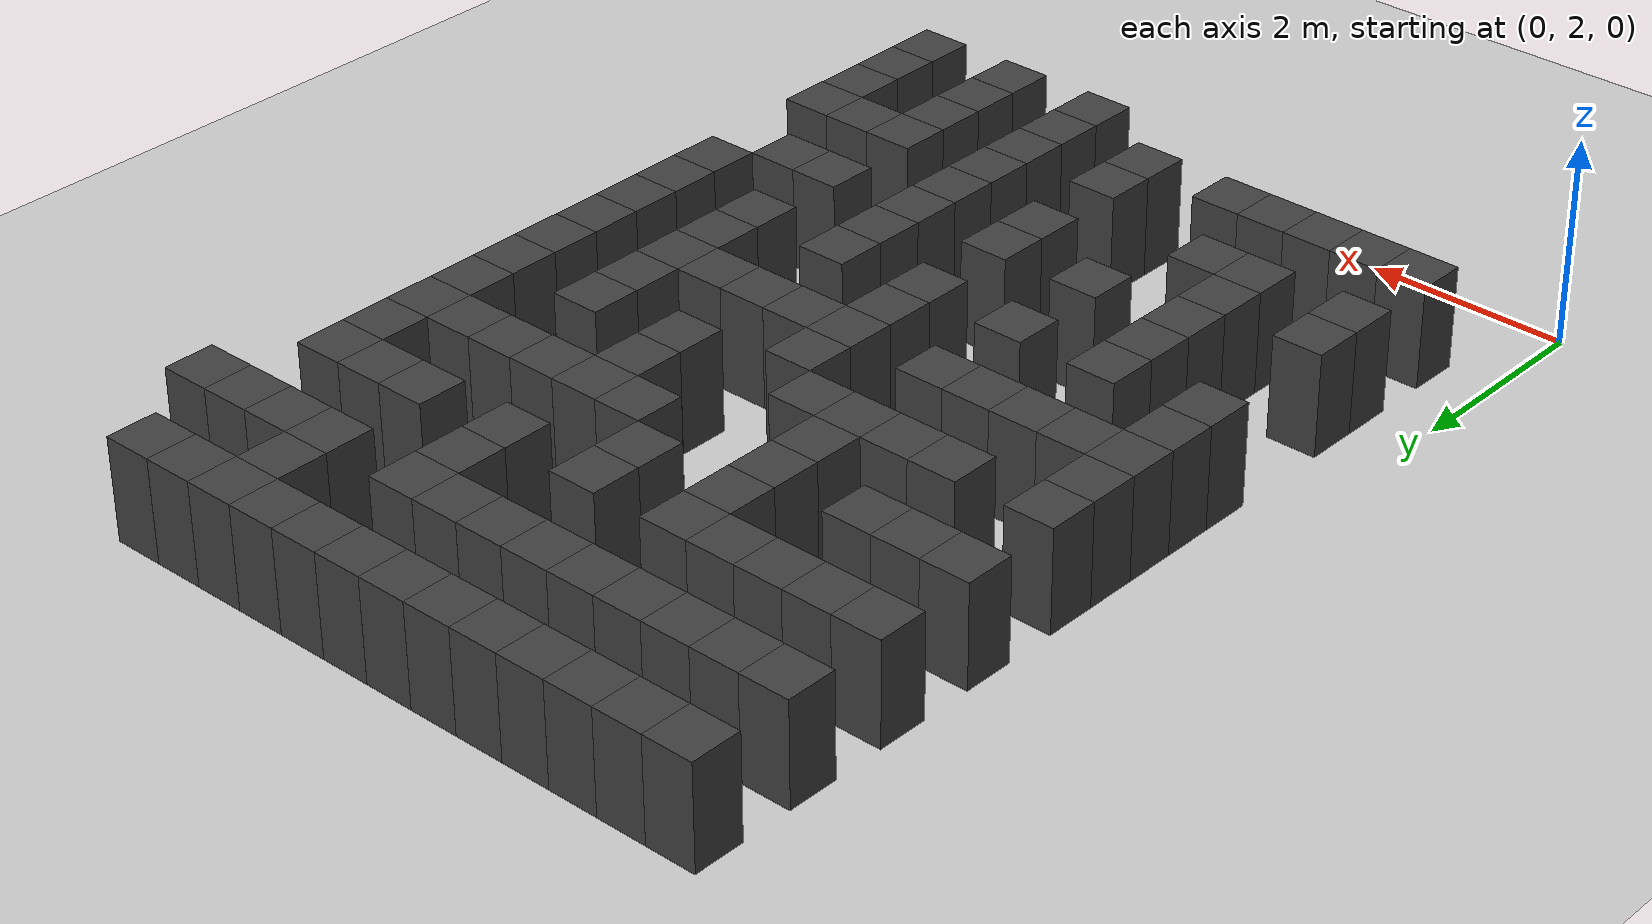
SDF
<sdf version="1.7">
 <world name="map_16048">
  <model name="ground_plane">
   <static>true</static>
   <link name="link">
    <collision name="collision">
     <geometry><plane><normal>0 0 1</normal><size>200 200</size></plane></geometry>
    </collision>
    <visual name="visual">
     <geometry><plane><normal>0 0 1</normal><size>200 200</size></plane></geometry>
     <material><ambient>0.8 0.8 0.8 1</ambient><diffuse>0.8 0.8 0.8 1</diffuse></material>
    </visual>
   </link>
  </model>
  <model name="maze_environment">
   <static>true</static>
   <link name="wall_26">
    <pose>0.750 12.250 0.500 0 0 0</pose>
    <collision name="col"><geometry><box><size>0.5 0.5 1.0</size></box></geometry></collision>
    <visual name="vis">
     <geometry><box><size>0.5 0.5 1.0</size></box></geometry>
     <material><ambient>0.15 0.15 0.15 1</ambient><diffuse>0.25 0.25 0.25 1</diffuse></material>
    </visual>
   </link>
   <link name="wall_27">
    <pose>1.250 12.250 0.500 0 0 0</pose>
    <collision name="col"><geometry><box><size>0.5 0.5 1.0</size></box></geometry></collision>
    <visual name="vis">
     <geometry><box><size>0.5 0.5 1.0</size></box></geometry>
     <material><ambient>0.15 0.15 0.15 1</ambient><diffuse>0.25 0.25 0.25 1</diffuse></material>
    </visual>
   </link>
   <link name="wall_28">
    <pose>1.750 12.250 0.500 0 0 0</pose>
    <collision name="col"><geometry><box><size>0.5 0.5 1.0</size></box></geometry></collision>
    <visual name="vis">
     <geometry><box><size>0.5 0.5 1.0</size></box></geometry>
     <material><ambient>0.15 0.15 0.15 1</ambient><diffuse>0.25 0.25 0.25 1</diffuse></material>
    </visual>
   </link>
   <link name="wall_29">
    <pose>2.250 12.250 0.500 0 0 0</pose>
    <collision name="col"><geometry><box><size>0.5 0.5 1.0</size></box></geometry></collision>
    <visual name="vis">
     <geometry><box><size>0.5 0.5 1.0</size></box></geometry>
     <material><ambient>0.15 0.15 0.15 1</ambient><diffuse>0.25 0.25 0.25 1</diffuse></material>
    </visual>
   </link>
   <link name="wall_30">
    <pose>2.750 12.250 0.500 0 0 0</pose>
    <collision name="col"><geometry><box><size>0.5 0.5 1.0</size></box></geometry></collision>
    <visual name="vis">
     <geometry><box><size>0.5 0.5 1.0</size></box></geometry>
     <material><ambient>0.15 0.15 0.15 1</ambient><diffuse>0.25 0.25 0.25 1</diffuse></material>
    </visual>
   </link>
   <link name="wall_31">
    <pose>3.250 12.250 0.500 0 0 0</pose>
    <collision name="col"><geometry><box><size>0.5 0.5 1.0</size></box></geometry></collision>
    <visual name="vis">
     <geometry><box><size>0.5 0.5 1.0</size></box></geometry>
     <material><ambient>0.15 0.15 0.15 1</ambient><diffuse>0.25 0.25 0.25 1</diffuse></material>
    </visual>
   </link>
   <link name="wall_32">
    <pose>3.750 12.250 0.500 0 0 0</pose>
    <collision name="col"><geometry><box><size>0.5 0.5 1.0</size></box></geometry></collision>
    <visual name="vis">
     <geometry><box><size>0.5 0.5 1.0</size></box></geometry>
     <material><ambient>0.15 0.15 0.15 1</ambient><diffuse>0.25 0.25 0.25 1</diffuse></material>
    </visual>
   </link>
   <link name="wall_33">
    <pose>4.250 12.250 0.500 0 0 0</pose>
    <collision name="col"><geometry><box><size>0.5 0.5 1.0</size></box></geometry></collision>
    <visual name="vis">
     <geometry><box><size>0.5 0.5 1.0</size></box></geometry>
     <material><ambient>0.15 0.15 0.15 1</ambient><diffuse>0.25 0.25 0.25 1</diffuse></material>
    </visual>
   </link>
   <link name="wall_34">
    <pose>4.750 12.250 0.500 0 0 0</pose>
    <collision name="col"><geometry><box><size>0.5 0.5 1.0</size></box></geometry></collision>
    <visual name="vis">
     <geometry><box><size>0.5 0.5 1.0</size></box></geometry>
     <material><ambient>0.15 0.15 0.15 1</ambient><diffuse>0.25 0.25 0.25 1</diffuse></material>
    </visual>
   </link>
   <link name="wall_35">
    <pose>5.250 12.250 0.500 0 0 0</pose>
    <collision name="col"><geometry><box><size>0.5 0.5 1.0</size></box></geometry></collision>
    <visual name="vis">
     <geometry><box><size>0.5 0.5 1.0</size></box></geometry>
     <material><ambient>0.15 0.15 0.15 1</ambient><diffuse>0.25 0.25 0.25 1</diffuse></material>
    </visual>
   </link>
   <link name="wall_36">
    <pose>5.750 12.250 0.500 0 0 0</pose>
    <collision name="col"><geometry><box><size>0.5 0.5 1.0</size></box></geometry></collision>
    <visual name="vis">
     <geometry><box><size>0.5 0.5 1.0</size></box></geometry>
     <material><ambient>0.15 0.15 0.15 1</ambient><diffuse>0.25 0.25 0.25 1</diffuse></material>
    </visual>
   </link>
   <link name="wall_37">
    <pose>6.250 12.250 0.500 0 0 0</pose>
    <collision name="col"><geometry><box><size>0.5 0.5 1.0</size></box></geometry></collision>
    <visual name="vis">
     <geometry><box><size>0.5 0.5 1.0</size></box></geometry>
     <material><ambient>0.15 0.15 0.15 1</ambient><diffuse>0.25 0.25 0.25 1</diffuse></material>
    </visual>
   </link>
   <link name="wall_38">
    <pose>6.750 12.250 0.500 0 0 0</pose>
    <collision name="col"><geometry><box><size>0.5 0.5 1.0</size></box></geometry></collision>
    <visual name="vis">
     <geometry><box><size>0.5 0.5 1.0</size></box></geometry>
     <material><ambient>0.15 0.15 0.15 1</ambient><diffuse>0.25 0.25 0.25 1</diffuse></material>
    </visual>
   </link>
   <link name="wall_54">
    <pose>5.750 11.750 0.500 0 0 0</pose>
    <collision name="col"><geometry><box><size>0.5 0.5 1.0</size></box></geometry></collision>
    <visual name="vis">
     <geometry><box><size>0.5 0.5 1.0</size></box></geometry>
     <material><ambient>0.15 0.15 0.15 1</ambient><diffuse>0.25 0.25 0.25 1</diffuse></material>
    </visual>
   </link>
   <link name="wall_73">
    <pose>0.750 11.250 0.500 0 0 0</pose>
    <collision name="col"><geometry><box><size>0.5 0.5 1.0</size></box></geometry></collision>
    <visual name="vis">
     <geometry><box><size>0.5 0.5 1.0</size></box></geometry>
     <material><ambient>0.15 0.15 0.15 1</ambient><diffuse>0.25 0.25 0.25 1</diffuse></material>
    </visual>
   </link>
   <link name="wall_74">
    <pose>1.250 11.250 0.500 0 0 0</pose>
    <collision name="col"><geometry><box><size>0.5 0.5 1.0</size></box></geometry></collision>
    <visual name="vis">
     <geometry><box><size>0.5 0.5 1.0</size></box></geometry>
     <material><ambient>0.15 0.15 0.15 1</ambient><diffuse>0.25 0.25 0.25 1</diffuse></material>
    </visual>
   </link>
   <link name="wall_75">
    <pose>1.750 11.250 0.500 0 0 0</pose>
    <collision name="col"><geometry><box><size>0.5 0.5 1.0</size></box></geometry></collision>
    <visual name="vis">
     <geometry><box><size>0.5 0.5 1.0</size></box></geometry>
     <material><ambient>0.15 0.15 0.15 1</ambient><diffuse>0.25 0.25 0.25 1</diffuse></material>
    </visual>
   </link>
   <link name="wall_76">
    <pose>2.250 11.250 0.500 0 0 0</pose>
    <collision name="col"><geometry><box><size>0.5 0.5 1.0</size></box></geometry></collision>
    <visual name="vis">
     <geometry><box><size>0.5 0.5 1.0</size></box></geometry>
     <material><ambient>0.15 0.15 0.15 1</ambient><diffuse>0.25 0.25 0.25 1</diffuse></material>
    </visual>
   </link>
   <link name="wall_77">
    <pose>2.750 11.250 0.500 0 0 0</pose>
    <collision name="col"><geometry><box><size>0.5 0.5 1.0</size></box></geometry></collision>
    <visual name="vis">
     <geometry><box><size>0.5 0.5 1.0</size></box></geometry>
     <material><ambient>0.15 0.15 0.15 1</ambient><diffuse>0.25 0.25 0.25 1</diffuse></material>
    </visual>
   </link>
   <link name="wall_78">
    <pose>3.250 11.250 0.500 0 0 0</pose>
    <collision name="col"><geometry><box><size>0.5 0.5 1.0</size></box></geometry></collision>
    <visual name="vis">
     <geometry><box><size>0.5 0.5 1.0</size></box></geometry>
     <material><ambient>0.15 0.15 0.15 1</ambient><diffuse>0.25 0.25 0.25 1</diffuse></material>
    </visual>
   </link>
   <link name="wall_79">
    <pose>3.750 11.250 0.500 0 0 0</pose>
    <collision name="col"><geometry><box><size>0.5 0.5 1.0</size></box></geometry></collision>
    <visual name="vis">
     <geometry><box><size>0.5 0.5 1.0</size></box></geometry>
     <material><ambient>0.15 0.15 0.15 1</ambient><diffuse>0.25 0.25 0.25 1</diffuse></material>
    </visual>
   </link>
   <link name="wall_80">
    <pose>4.250 11.250 0.500 0 0 0</pose>
    <collision name="col"><geometry><box><size>0.5 0.5 1.0</size></box></geometry></collision>
    <visual name="vis">
     <geometry><box><size>0.5 0.5 1.0</size></box></geometry>
     <material><ambient>0.15 0.15 0.15 1</ambient><diffuse>0.25 0.25 0.25 1</diffuse></material>
    </visual>
   </link>
   <link name="wall_81">
    <pose>4.750 11.250 0.500 0 0 0</pose>
    <collision name="col"><geometry><box><size>0.5 0.5 1.0</size></box></geometry></collision>
    <visual name="vis">
     <geometry><box><size>0.5 0.5 1.0</size></box></geometry>
     <material><ambient>0.15 0.15 0.15 1</ambient><diffuse>0.25 0.25 0.25 1</diffuse></material>
    </visual>
   </link>
   <link name="wall_82">
    <pose>5.750 11.250 0.500 0 0 0</pose>
    <collision name="col"><geometry><box><size>0.5 0.5 1.0</size></box></geometry></collision>
    <visual name="vis">
     <geometry><box><size>0.5 0.5 1.0</size></box></geometry>
     <material><ambient>0.15 0.15 0.15 1</ambient><diffuse>0.25 0.25 0.25 1</diffuse></material>
    </visual>
   </link>
   <link name="wall_83">
    <pose>6.250 11.250 0.500 0 0 0</pose>
    <collision name="col"><geometry><box><size>0.5 0.5 1.0</size></box></geometry></collision>
    <visual name="vis">
     <geometry><box><size>0.5 0.5 1.0</size></box></geometry>
     <material><ambient>0.15 0.15 0.15 1</ambient><diffuse>0.25 0.25 0.25 1</diffuse></material>
    </visual>
   </link>
   <link name="wall_84">
    <pose>6.750 11.250 0.500 0 0 0</pose>
    <collision name="col"><geometry><box><size>0.5 0.5 1.0</size></box></geometry></collision>
    <visual name="vis">
     <geometry><box><size>0.5 0.5 1.0</size></box></geometry>
     <material><ambient>0.15 0.15 0.15 1</ambient><diffuse>0.25 0.25 0.25 1</diffuse></material>
    </visual>
   </link>
   <link name="wall_85">
    <pose>7.250 11.250 0.500 0 0 0</pose>
    <collision name="col"><geometry><box><size>0.5 0.5 1.0</size></box></geometry></collision>
    <visual name="vis">
     <geometry><box><size>0.5 0.5 1.0</size></box></geometry>
     <material><ambient>0.15 0.15 0.15 1</ambient><diffuse>0.25 0.25 0.25 1</diffuse></material>
    </visual>
   </link>
   <link name="wall_99">
    <pose>4.750 10.750 0.500 0 0 0</pose>
    <collision name="col"><geometry><box><size>0.5 0.5 1.0</size></box></geometry></collision>
    <visual name="vis">
     <geometry><box><size>0.5 0.5 1.0</size></box></geometry>
     <material><ambient>0.15 0.15 0.15 1</ambient><diffuse>0.25 0.25 0.25 1</diffuse></material>
    </visual>
   </link>
   <link name="wall_120">
    <pose>0.750 10.250 0.500 0 0 0</pose>
    <collision name="col"><geometry><box><size>0.5 0.5 1.0</size></box></geometry></collision>
    <visual name="vis">
     <geometry><box><size>0.5 0.5 1.0</size></box></geometry>
     <material><ambient>0.15 0.15 0.15 1</ambient><diffuse>0.25 0.25 0.25 1</diffuse></material>
    </visual>
   </link>
   <link name="wall_121">
    <pose>1.250 10.250 0.500 0 0 0</pose>
    <collision name="col"><geometry><box><size>0.5 0.5 1.0</size></box></geometry></collision>
    <visual name="vis">
     <geometry><box><size>0.5 0.5 1.0</size></box></geometry>
     <material><ambient>0.15 0.15 0.15 1</ambient><diffuse>0.25 0.25 0.25 1</diffuse></material>
    </visual>
   </link>
   <link name="wall_122">
    <pose>1.750 10.250 0.500 0 0 0</pose>
    <collision name="col"><geometry><box><size>0.5 0.5 1.0</size></box></geometry></collision>
    <visual name="vis">
     <geometry><box><size>0.5 0.5 1.0</size></box></geometry>
     <material><ambient>0.15 0.15 0.15 1</ambient><diffuse>0.25 0.25 0.25 1</diffuse></material>
    </visual>
   </link>
   <link name="wall_123">
    <pose>2.250 10.250 0.500 0 0 0</pose>
    <collision name="col"><geometry><box><size>0.5 0.5 1.0</size></box></geometry></collision>
    <visual name="vis">
     <geometry><box><size>0.5 0.5 1.0</size></box></geometry>
     <material><ambient>0.15 0.15 0.15 1</ambient><diffuse>0.25 0.25 0.25 1</diffuse></material>
    </visual>
   </link>
   <link name="wall_124">
    <pose>2.750 10.250 0.500 0 0 0</pose>
    <collision name="col"><geometry><box><size>0.5 0.5 1.0</size></box></geometry></collision>
    <visual name="vis">
     <geometry><box><size>0.5 0.5 1.0</size></box></geometry>
     <material><ambient>0.15 0.15 0.15 1</ambient><diffuse>0.25 0.25 0.25 1</diffuse></material>
    </visual>
   </link>
   <link name="wall_125">
    <pose>3.750 10.250 0.500 0 0 0</pose>
    <collision name="col"><geometry><box><size>0.5 0.5 1.0</size></box></geometry></collision>
    <visual name="vis">
     <geometry><box><size>0.5 0.5 1.0</size></box></geometry>
     <material><ambient>0.15 0.15 0.15 1</ambient><diffuse>0.25 0.25 0.25 1</diffuse></material>
    </visual>
   </link>
   <link name="wall_126">
    <pose>4.750 10.250 0.500 0 0 0</pose>
    <collision name="col"><geometry><box><size>0.5 0.5 1.0</size></box></geometry></collision>
    <visual name="vis">
     <geometry><box><size>0.5 0.5 1.0</size></box></geometry>
     <material><ambient>0.15 0.15 0.15 1</ambient><diffuse>0.25 0.25 0.25 1</diffuse></material>
    </visual>
   </link>
   <link name="wall_127">
    <pose>5.750 10.250 0.500 0 0 0</pose>
    <collision name="col"><geometry><box><size>0.5 0.5 1.0</size></box></geometry></collision>
    <visual name="vis">
     <geometry><box><size>0.5 0.5 1.0</size></box></geometry>
     <material><ambient>0.15 0.15 0.15 1</ambient><diffuse>0.25 0.25 0.25 1</diffuse></material>
    </visual>
   </link>
   <link name="wall_128">
    <pose>6.250 10.250 0.500 0 0 0</pose>
    <collision name="col"><geometry><box><size>0.5 0.5 1.0</size></box></geometry></collision>
    <visual name="vis">
     <geometry><box><size>0.5 0.5 1.0</size></box></geometry>
     <material><ambient>0.15 0.15 0.15 1</ambient><diffuse>0.25 0.25 0.25 1</diffuse></material>
    </visual>
   </link>
   <link name="wall_129">
    <pose>6.750 10.250 0.500 0 0 0</pose>
    <collision name="col"><geometry><box><size>0.5 0.5 1.0</size></box></geometry></collision>
    <visual name="vis">
     <geometry><box><size>0.5 0.5 1.0</size></box></geometry>
     <material><ambient>0.15 0.15 0.15 1</ambient><diffuse>0.25 0.25 0.25 1</diffuse></material>
    </visual>
   </link>
   <link name="wall_142">
    <pose>2.750 9.750 0.500 0 0 0</pose>
    <collision name="col"><geometry><box><size>0.5 0.5 1.0</size></box></geometry></collision>
    <visual name="vis">
     <geometry><box><size>0.5 0.5 1.0</size></box></geometry>
     <material><ambient>0.15 0.15 0.15 1</ambient><diffuse>0.25 0.25 0.25 1</diffuse></material>
    </visual>
   </link>
   <link name="wall_143">
    <pose>3.750 9.750 0.500 0 0 0</pose>
    <collision name="col"><geometry><box><size>0.5 0.5 1.0</size></box></geometry></collision>
    <visual name="vis">
     <geometry><box><size>0.5 0.5 1.0</size></box></geometry>
     <material><ambient>0.15 0.15 0.15 1</ambient><diffuse>0.25 0.25 0.25 1</diffuse></material>
    </visual>
   </link>
   <link name="wall_144">
    <pose>6.750 9.750 0.500 0 0 0</pose>
    <collision name="col"><geometry><box><size>0.5 0.5 1.0</size></box></geometry></collision>
    <visual name="vis">
     <geometry><box><size>0.5 0.5 1.0</size></box></geometry>
     <material><ambient>0.15 0.15 0.15 1</ambient><diffuse>0.25 0.25 0.25 1</diffuse></material>
    </visual>
   </link>
   <link name="wall_173">
    <pose>0.750 9.250 0.500 0 0 0</pose>
    <collision name="col"><geometry><box><size>0.5 0.5 1.0</size></box></geometry></collision>
    <visual name="vis">
     <geometry><box><size>0.5 0.5 1.0</size></box></geometry>
     <material><ambient>0.15 0.15 0.15 1</ambient><diffuse>0.25 0.25 0.25 1</diffuse></material>
    </visual>
   </link>
   <link name="wall_174">
    <pose>1.250 9.250 0.500 0 0 0</pose>
    <collision name="col"><geometry><box><size>0.5 0.5 1.0</size></box></geometry></collision>
    <visual name="vis">
     <geometry><box><size>0.5 0.5 1.0</size></box></geometry>
     <material><ambient>0.15 0.15 0.15 1</ambient><diffuse>0.25 0.25 0.25 1</diffuse></material>
    </visual>
   </link>
   <link name="wall_175">
    <pose>1.750 9.250 0.500 0 0 0</pose>
    <collision name="col"><geometry><box><size>0.5 0.5 1.0</size></box></geometry></collision>
    <visual name="vis">
     <geometry><box><size>0.5 0.5 1.0</size></box></geometry>
     <material><ambient>0.15 0.15 0.15 1</ambient><diffuse>0.25 0.25 0.25 1</diffuse></material>
    </visual>
   </link>
   <link name="wall_176">
    <pose>2.750 9.250 0.500 0 0 0</pose>
    <collision name="col"><geometry><box><size>0.5 0.5 1.0</size></box></geometry></collision>
    <visual name="vis">
     <geometry><box><size>0.5 0.5 1.0</size></box></geometry>
     <material><ambient>0.15 0.15 0.15 1</ambient><diffuse>0.25 0.25 0.25 1</diffuse></material>
    </visual>
   </link>
   <link name="wall_177">
    <pose>4.250 9.250 0.500 0 0 0</pose>
    <collision name="col"><geometry><box><size>0.5 0.5 1.0</size></box></geometry></collision>
    <visual name="vis">
     <geometry><box><size>0.5 0.5 1.0</size></box></geometry>
     <material><ambient>0.15 0.15 0.15 1</ambient><diffuse>0.25 0.25 0.25 1</diffuse></material>
    </visual>
   </link>
   <link name="wall_178">
    <pose>4.750 9.250 0.500 0 0 0</pose>
    <collision name="col"><geometry><box><size>0.5 0.5 1.0</size></box></geometry></collision>
    <visual name="vis">
     <geometry><box><size>0.5 0.5 1.0</size></box></geometry>
     <material><ambient>0.15 0.15 0.15 1</ambient><diffuse>0.25 0.25 0.25 1</diffuse></material>
    </visual>
   </link>
   <link name="wall_179">
    <pose>5.250 9.250 0.500 0 0 0</pose>
    <collision name="col"><geometry><box><size>0.5 0.5 1.0</size></box></geometry></collision>
    <visual name="vis">
     <geometry><box><size>0.5 0.5 1.0</size></box></geometry>
     <material><ambient>0.15 0.15 0.15 1</ambient><diffuse>0.25 0.25 0.25 1</diffuse></material>
    </visual>
   </link>
   <link name="wall_180">
    <pose>5.750 9.250 0.500 0 0 0</pose>
    <collision name="col"><geometry><box><size>0.5 0.5 1.0</size></box></geometry></collision>
    <visual name="vis">
     <geometry><box><size>0.5 0.5 1.0</size></box></geometry>
     <material><ambient>0.15 0.15 0.15 1</ambient><diffuse>0.25 0.25 0.25 1</diffuse></material>
    </visual>
   </link>
   <link name="wall_181">
    <pose>6.250 9.250 0.500 0 0 0</pose>
    <collision name="col"><geometry><box><size>0.5 0.5 1.0</size></box></geometry></collision>
    <visual name="vis">
     <geometry><box><size>0.5 0.5 1.0</size></box></geometry>
     <material><ambient>0.15 0.15 0.15 1</ambient><diffuse>0.25 0.25 0.25 1</diffuse></material>
    </visual>
   </link>
   <link name="wall_182">
    <pose>6.750 9.250 0.500 0 0 0</pose>
    <collision name="col"><geometry><box><size>0.5 0.5 1.0</size></box></geometry></collision>
    <visual name="vis">
     <geometry><box><size>0.5 0.5 1.0</size></box></geometry>
     <material><ambient>0.15 0.15 0.15 1</ambient><diffuse>0.25 0.25 0.25 1</diffuse></material>
    </visual>
   </link>
   <link name="wall_193">
    <pose>2.750 8.750 0.500 0 0 0</pose>
    <collision name="col"><geometry><box><size>0.5 0.5 1.0</size></box></geometry></collision>
    <visual name="vis">
     <geometry><box><size>0.5 0.5 1.0</size></box></geometry>
     <material><ambient>0.15 0.15 0.15 1</ambient><diffuse>0.25 0.25 0.25 1</diffuse></material>
    </visual>
   </link>
   <link name="wall_194">
    <pose>4.750 8.750 0.500 0 0 0</pose>
    <collision name="col"><geometry><box><size>0.5 0.5 1.0</size></box></geometry></collision>
    <visual name="vis">
     <geometry><box><size>0.5 0.5 1.0</size></box></geometry>
     <material><ambient>0.15 0.15 0.15 1</ambient><diffuse>0.25 0.25 0.25 1</diffuse></material>
    </visual>
   </link>
   <link name="wall_195">
    <pose>6.750 8.750 0.500 0 0 0</pose>
    <collision name="col"><geometry><box><size>0.5 0.5 1.0</size></box></geometry></collision>
    <visual name="vis">
     <geometry><box><size>0.5 0.5 1.0</size></box></geometry>
     <material><ambient>0.15 0.15 0.15 1</ambient><diffuse>0.25 0.25 0.25 1</diffuse></material>
    </visual>
   </link>
   <link name="wall_216">
    <pose>0.750 8.250 0.500 0 0 0</pose>
    <collision name="col"><geometry><box><size>0.5 0.5 1.0</size></box></geometry></collision>
    <visual name="vis">
     <geometry><box><size>0.5 0.5 1.0</size></box></geometry>
     <material><ambient>0.15 0.15 0.15 1</ambient><diffuse>0.25 0.25 0.25 1</diffuse></material>
    </visual>
   </link>
   <link name="wall_217">
    <pose>1.750 8.250 0.500 0 0 0</pose>
    <collision name="col"><geometry><box><size>0.5 0.5 1.0</size></box></geometry></collision>
    <visual name="vis">
     <geometry><box><size>0.5 0.5 1.0</size></box></geometry>
     <material><ambient>0.15 0.15 0.15 1</ambient><diffuse>0.25 0.25 0.25 1</diffuse></material>
    </visual>
   </link>
   <link name="wall_218">
    <pose>2.250 8.250 0.500 0 0 0</pose>
    <collision name="col"><geometry><box><size>0.5 0.5 1.0</size></box></geometry></collision>
    <visual name="vis">
     <geometry><box><size>0.5 0.5 1.0</size></box></geometry>
     <material><ambient>0.15 0.15 0.15 1</ambient><diffuse>0.25 0.25 0.25 1</diffuse></material>
    </visual>
   </link>
   <link name="wall_219">
    <pose>2.750 8.250 0.500 0 0 0</pose>
    <collision name="col"><geometry><box><size>0.5 0.5 1.0</size></box></geometry></collision>
    <visual name="vis">
     <geometry><box><size>0.5 0.5 1.0</size></box></geometry>
     <material><ambient>0.15 0.15 0.15 1</ambient><diffuse>0.25 0.25 0.25 1</diffuse></material>
    </visual>
   </link>
   <link name="wall_220">
    <pose>3.250 8.250 0.500 0 0 0</pose>
    <collision name="col"><geometry><box><size>0.5 0.5 1.0</size></box></geometry></collision>
    <visual name="vis">
     <geometry><box><size>0.5 0.5 1.0</size></box></geometry>
     <material><ambient>0.15 0.15 0.15 1</ambient><diffuse>0.25 0.25 0.25 1</diffuse></material>
    </visual>
   </link>
   <link name="wall_221">
    <pose>4.750 8.250 0.500 0 0 0</pose>
    <collision name="col"><geometry><box><size>0.5 0.5 1.0</size></box></geometry></collision>
    <visual name="vis">
     <geometry><box><size>0.5 0.5 1.0</size></box></geometry>
     <material><ambient>0.15 0.15 0.15 1</ambient><diffuse>0.25 0.25 0.25 1</diffuse></material>
    </visual>
   </link>
   <link name="wall_222">
    <pose>5.750 8.250 0.500 0 0 0</pose>
    <collision name="col"><geometry><box><size>0.5 0.5 1.0</size></box></geometry></collision>
    <visual name="vis">
     <geometry><box><size>0.5 0.5 1.0</size></box></geometry>
     <material><ambient>0.15 0.15 0.15 1</ambient><diffuse>0.25 0.25 0.25 1</diffuse></material>
    </visual>
   </link>
   <link name="wall_223">
    <pose>6.750 8.250 0.500 0 0 0</pose>
    <collision name="col"><geometry><box><size>0.5 0.5 1.0</size></box></geometry></collision>
    <visual name="vis">
     <geometry><box><size>0.5 0.5 1.0</size></box></geometry>
     <material><ambient>0.15 0.15 0.15 1</ambient><diffuse>0.25 0.25 0.25 1</diffuse></material>
    </visual>
   </link>
   <link name="wall_240">
    <pose>0.750 7.750 0.500 0 0 0</pose>
    <collision name="col"><geometry><box><size>0.5 0.5 1.0</size></box></geometry></collision>
    <visual name="vis">
     <geometry><box><size>0.5 0.5 1.0</size></box></geometry>
     <material><ambient>0.15 0.15 0.15 1</ambient><diffuse>0.25 0.25 0.25 1</diffuse></material>
    </visual>
   </link>
   <link name="wall_241">
    <pose>3.750 7.750 0.500 0 0 0</pose>
    <collision name="col"><geometry><box><size>0.5 0.5 1.0</size></box></geometry></collision>
    <visual name="vis">
     <geometry><box><size>0.5 0.5 1.0</size></box></geometry>
     <material><ambient>0.15 0.15 0.15 1</ambient><diffuse>0.25 0.25 0.25 1</diffuse></material>
    </visual>
   </link>
   <link name="wall_242">
    <pose>5.750 7.750 0.500 0 0 0</pose>
    <collision name="col"><geometry><box><size>0.5 0.5 1.0</size></box></geometry></collision>
    <visual name="vis">
     <geometry><box><size>0.5 0.5 1.0</size></box></geometry>
     <material><ambient>0.15 0.15 0.15 1</ambient><diffuse>0.25 0.25 0.25 1</diffuse></material>
    </visual>
   </link>
   <link name="wall_243">
    <pose>6.750 7.750 0.500 0 0 0</pose>
    <collision name="col"><geometry><box><size>0.5 0.5 1.0</size></box></geometry></collision>
    <visual name="vis">
     <geometry><box><size>0.5 0.5 1.0</size></box></geometry>
     <material><ambient>0.15 0.15 0.15 1</ambient><diffuse>0.25 0.25 0.25 1</diffuse></material>
    </visual>
   </link>
   <link name="wall_264">
    <pose>0.750 7.250 0.500 0 0 0</pose>
    <collision name="col"><geometry><box><size>0.5 0.5 1.0</size></box></geometry></collision>
    <visual name="vis">
     <geometry><box><size>0.5 0.5 1.0</size></box></geometry>
     <material><ambient>0.15 0.15 0.15 1</ambient><diffuse>0.25 0.25 0.25 1</diffuse></material>
    </visual>
   </link>
   <link name="wall_265">
    <pose>1.250 7.250 0.500 0 0 0</pose>
    <collision name="col"><geometry><box><size>0.5 0.5 1.0</size></box></geometry></collision>
    <visual name="vis">
     <geometry><box><size>0.5 0.5 1.0</size></box></geometry>
     <material><ambient>0.15 0.15 0.15 1</ambient><diffuse>0.25 0.25 0.25 1</diffuse></material>
    </visual>
   </link>
   <link name="wall_266">
    <pose>1.750 7.250 0.500 0 0 0</pose>
    <collision name="col"><geometry><box><size>0.5 0.5 1.0</size></box></geometry></collision>
    <visual name="vis">
     <geometry><box><size>0.5 0.5 1.0</size></box></geometry>
     <material><ambient>0.15 0.15 0.15 1</ambient><diffuse>0.25 0.25 0.25 1</diffuse></material>
    </visual>
   </link>
   <link name="wall_267">
    <pose>2.250 7.250 0.500 0 0 0</pose>
    <collision name="col"><geometry><box><size>0.5 0.5 1.0</size></box></geometry></collision>
    <visual name="vis">
     <geometry><box><size>0.5 0.5 1.0</size></box></geometry>
     <material><ambient>0.15 0.15 0.15 1</ambient><diffuse>0.25 0.25 0.25 1</diffuse></material>
    </visual>
   </link>
   <link name="wall_268">
    <pose>2.750 7.250 0.500 0 0 0</pose>
    <collision name="col"><geometry><box><size>0.5 0.5 1.0</size></box></geometry></collision>
    <visual name="vis">
     <geometry><box><size>0.5 0.5 1.0</size></box></geometry>
     <material><ambient>0.15 0.15 0.15 1</ambient><diffuse>0.25 0.25 0.25 1</diffuse></material>
    </visual>
   </link>
   <link name="wall_269">
    <pose>3.750 7.250 0.500 0 0 0</pose>
    <collision name="col"><geometry><box><size>0.5 0.5 1.0</size></box></geometry></collision>
    <visual name="vis">
     <geometry><box><size>0.5 0.5 1.0</size></box></geometry>
     <material><ambient>0.15 0.15 0.15 1</ambient><diffuse>0.25 0.25 0.25 1</diffuse></material>
    </visual>
   </link>
   <link name="wall_270">
    <pose>4.250 7.250 0.500 0 0 0</pose>
    <collision name="col"><geometry><box><size>0.5 0.5 1.0</size></box></geometry></collision>
    <visual name="vis">
     <geometry><box><size>0.5 0.5 1.0</size></box></geometry>
     <material><ambient>0.15 0.15 0.15 1</ambient><diffuse>0.25 0.25 0.25 1</diffuse></material>
    </visual>
   </link>
   <link name="wall_271">
    <pose>4.750 7.250 0.500 0 0 0</pose>
    <collision name="col"><geometry><box><size>0.5 0.5 1.0</size></box></geometry></collision>
    <visual name="vis">
     <geometry><box><size>0.5 0.5 1.0</size></box></geometry>
     <material><ambient>0.15 0.15 0.15 1</ambient><diffuse>0.25 0.25 0.25 1</diffuse></material>
    </visual>
   </link>
   <link name="wall_272">
    <pose>5.250 7.250 0.500 0 0 0</pose>
    <collision name="col"><geometry><box><size>0.5 0.5 1.0</size></box></geometry></collision>
    <visual name="vis">
     <geometry><box><size>0.5 0.5 1.0</size></box></geometry>
     <material><ambient>0.15 0.15 0.15 1</ambient><diffuse>0.25 0.25 0.25 1</diffuse></material>
    </visual>
   </link>
   <link name="wall_273">
    <pose>5.750 7.250 0.500 0 0 0</pose>
    <collision name="col"><geometry><box><size>0.5 0.5 1.0</size></box></geometry></collision>
    <visual name="vis">
     <geometry><box><size>0.5 0.5 1.0</size></box></geometry>
     <material><ambient>0.15 0.15 0.15 1</ambient><diffuse>0.25 0.25 0.25 1</diffuse></material>
    </visual>
   </link>
   <link name="wall_274">
    <pose>6.750 7.250 0.500 0 0 0</pose>
    <collision name="col"><geometry><box><size>0.5 0.5 1.0</size></box></geometry></collision>
    <visual name="vis">
     <geometry><box><size>0.5 0.5 1.0</size></box></geometry>
     <material><ambient>0.15 0.15 0.15 1</ambient><diffuse>0.25 0.25 0.25 1</diffuse></material>
    </visual>
   </link>
   <link name="wall_289">
    <pose>0.750 6.750 0.500 0 0 0</pose>
    <collision name="col"><geometry><box><size>0.5 0.5 1.0</size></box></geometry></collision>
    <visual name="vis">
     <geometry><box><size>0.5 0.5 1.0</size></box></geometry>
     <material><ambient>0.15 0.15 0.15 1</ambient><diffuse>0.25 0.25 0.25 1</diffuse></material>
    </visual>
   </link>
   <link name="wall_290">
    <pose>3.750 6.750 0.500 0 0 0</pose>
    <collision name="col"><geometry><box><size>0.5 0.5 1.0</size></box></geometry></collision>
    <visual name="vis">
     <geometry><box><size>0.5 0.5 1.0</size></box></geometry>
     <material><ambient>0.15 0.15 0.15 1</ambient><diffuse>0.25 0.25 0.25 1</diffuse></material>
    </visual>
   </link>
   <link name="wall_291">
    <pose>5.750 6.750 0.500 0 0 0</pose>
    <collision name="col"><geometry><box><size>0.5 0.5 1.0</size></box></geometry></collision>
    <visual name="vis">
     <geometry><box><size>0.5 0.5 1.0</size></box></geometry>
     <material><ambient>0.15 0.15 0.15 1</ambient><diffuse>0.25 0.25 0.25 1</diffuse></material>
    </visual>
   </link>
   <link name="wall_292">
    <pose>6.750 6.750 0.500 0 0 0</pose>
    <collision name="col"><geometry><box><size>0.5 0.5 1.0</size></box></geometry></collision>
    <visual name="vis">
     <geometry><box><size>0.5 0.5 1.0</size></box></geometry>
     <material><ambient>0.15 0.15 0.15 1</ambient><diffuse>0.25 0.25 0.25 1</diffuse></material>
    </visual>
   </link>
   <link name="wall_315">
    <pose>0.750 6.250 0.500 0 0 0</pose>
    <collision name="col"><geometry><box><size>0.5 0.5 1.0</size></box></geometry></collision>
    <visual name="vis">
     <geometry><box><size>0.5 0.5 1.0</size></box></geometry>
     <material><ambient>0.15 0.15 0.15 1</ambient><diffuse>0.25 0.25 0.25 1</diffuse></material>
    </visual>
   </link>
   <link name="wall_316">
    <pose>1.750 6.250 0.500 0 0 0</pose>
    <collision name="col"><geometry><box><size>0.5 0.5 1.0</size></box></geometry></collision>
    <visual name="vis">
     <geometry><box><size>0.5 0.5 1.0</size></box></geometry>
     <material><ambient>0.15 0.15 0.15 1</ambient><diffuse>0.25 0.25 0.25 1</diffuse></material>
    </visual>
   </link>
   <link name="wall_317">
    <pose>2.750 6.250 0.500 0 0 0</pose>
    <collision name="col"><geometry><box><size>0.5 0.5 1.0</size></box></geometry></collision>
    <visual name="vis">
     <geometry><box><size>0.5 0.5 1.0</size></box></geometry>
     <material><ambient>0.15 0.15 0.15 1</ambient><diffuse>0.25 0.25 0.25 1</diffuse></material>
    </visual>
   </link>
   <link name="wall_318">
    <pose>3.750 6.250 0.500 0 0 0</pose>
    <collision name="col"><geometry><box><size>0.5 0.5 1.0</size></box></geometry></collision>
    <visual name="vis">
     <geometry><box><size>0.5 0.5 1.0</size></box></geometry>
     <material><ambient>0.15 0.15 0.15 1</ambient><diffuse>0.25 0.25 0.25 1</diffuse></material>
    </visual>
   </link>
   <link name="wall_319">
    <pose>4.750 6.250 0.500 0 0 0</pose>
    <collision name="col"><geometry><box><size>0.5 0.5 1.0</size></box></geometry></collision>
    <visual name="vis">
     <geometry><box><size>0.5 0.5 1.0</size></box></geometry>
     <material><ambient>0.15 0.15 0.15 1</ambient><diffuse>0.25 0.25 0.25 1</diffuse></material>
    </visual>
   </link>
   <link name="wall_320">
    <pose>5.750 6.250 0.500 0 0 0</pose>
    <collision name="col"><geometry><box><size>0.5 0.5 1.0</size></box></geometry></collision>
    <visual name="vis">
     <geometry><box><size>0.5 0.5 1.0</size></box></geometry>
     <material><ambient>0.15 0.15 0.15 1</ambient><diffuse>0.25 0.25 0.25 1</diffuse></material>
    </visual>
   </link>
   <link name="wall_321">
    <pose>6.750 6.250 0.500 0 0 0</pose>
    <collision name="col"><geometry><box><size>0.5 0.5 1.0</size></box></geometry></collision>
    <visual name="vis">
     <geometry><box><size>0.5 0.5 1.0</size></box></geometry>
     <material><ambient>0.15 0.15 0.15 1</ambient><diffuse>0.25 0.25 0.25 1</diffuse></material>
    </visual>
   </link>
   <link name="wall_337">
    <pose>1.750 5.750 0.500 0 0 0</pose>
    <collision name="col"><geometry><box><size>0.5 0.5 1.0</size></box></geometry></collision>
    <visual name="vis">
     <geometry><box><size>0.5 0.5 1.0</size></box></geometry>
     <material><ambient>0.15 0.15 0.15 1</ambient><diffuse>0.25 0.25 0.25 1</diffuse></material>
    </visual>
   </link>
   <link name="wall_338">
    <pose>4.750 5.750 0.500 0 0 0</pose>
    <collision name="col"><geometry><box><size>0.5 0.5 1.0</size></box></geometry></collision>
    <visual name="vis">
     <geometry><box><size>0.5 0.5 1.0</size></box></geometry>
     <material><ambient>0.15 0.15 0.15 1</ambient><diffuse>0.25 0.25 0.25 1</diffuse></material>
    </visual>
   </link>
   <link name="wall_339">
    <pose>6.750 5.750 0.500 0 0 0</pose>
    <collision name="col"><geometry><box><size>0.5 0.5 1.0</size></box></geometry></collision>
    <visual name="vis">
     <geometry><box><size>0.5 0.5 1.0</size></box></geometry>
     <material><ambient>0.15 0.15 0.15 1</ambient><diffuse>0.25 0.25 0.25 1</diffuse></material>
    </visual>
   </link>
   <link name="wall_362">
    <pose>1.750 5.250 0.500 0 0 0</pose>
    <collision name="col"><geometry><box><size>0.5 0.5 1.0</size></box></geometry></collision>
    <visual name="vis">
     <geometry><box><size>0.5 0.5 1.0</size></box></geometry>
     <material><ambient>0.15 0.15 0.15 1</ambient><diffuse>0.25 0.25 0.25 1</diffuse></material>
    </visual>
   </link>
   <link name="wall_363">
    <pose>2.750 5.250 0.500 0 0 0</pose>
    <collision name="col"><geometry><box><size>0.5 0.5 1.0</size></box></geometry></collision>
    <visual name="vis">
     <geometry><box><size>0.5 0.5 1.0</size></box></geometry>
     <material><ambient>0.15 0.15 0.15 1</ambient><diffuse>0.25 0.25 0.25 1</diffuse></material>
    </visual>
   </link>
   <link name="wall_364">
    <pose>3.750 5.250 0.500 0 0 0</pose>
    <collision name="col"><geometry><box><size>0.5 0.5 1.0</size></box></geometry></collision>
    <visual name="vis">
     <geometry><box><size>0.5 0.5 1.0</size></box></geometry>
     <material><ambient>0.15 0.15 0.15 1</ambient><diffuse>0.25 0.25 0.25 1</diffuse></material>
    </visual>
   </link>
   <link name="wall_365">
    <pose>4.750 5.250 0.500 0 0 0</pose>
    <collision name="col"><geometry><box><size>0.5 0.5 1.0</size></box></geometry></collision>
    <visual name="vis">
     <geometry><box><size>0.5 0.5 1.0</size></box></geometry>
     <material><ambient>0.15 0.15 0.15 1</ambient><diffuse>0.25 0.25 0.25 1</diffuse></material>
    </visual>
   </link>
   <link name="wall_366">
    <pose>5.750 5.250 0.500 0 0 0</pose>
    <collision name="col"><geometry><box><size>0.5 0.5 1.0</size></box></geometry></collision>
    <visual name="vis">
     <geometry><box><size>0.5 0.5 1.0</size></box></geometry>
     <material><ambient>0.15 0.15 0.15 1</ambient><diffuse>0.25 0.25 0.25 1</diffuse></material>
    </visual>
   </link>
   <link name="wall_367">
    <pose>6.250 5.250 0.500 0 0 0</pose>
    <collision name="col"><geometry><box><size>0.5 0.5 1.0</size></box></geometry></collision>
    <visual name="vis">
     <geometry><box><size>0.5 0.5 1.0</size></box></geometry>
     <material><ambient>0.15 0.15 0.15 1</ambient><diffuse>0.25 0.25 0.25 1</diffuse></material>
    </visual>
   </link>
   <link name="wall_379">
    <pose>0.750 4.750 0.500 0 0 0</pose>
    <collision name="col"><geometry><box><size>0.5 0.5 1.0</size></box></geometry></collision>
    <visual name="vis">
     <geometry><box><size>0.5 0.5 1.0</size></box></geometry>
     <material><ambient>0.15 0.15 0.15 1</ambient><diffuse>0.25 0.25 0.25 1</diffuse></material>
    </visual>
   </link>
   <link name="wall_380">
    <pose>1.750 4.750 0.500 0 0 0</pose>
    <collision name="col"><geometry><box><size>0.5 0.5 1.0</size></box></geometry></collision>
    <visual name="vis">
     <geometry><box><size>0.5 0.5 1.0</size></box></geometry>
     <material><ambient>0.15 0.15 0.15 1</ambient><diffuse>0.25 0.25 0.25 1</diffuse></material>
    </visual>
   </link>
   <link name="wall_381">
    <pose>3.750 4.750 0.500 0 0 0</pose>
    <collision name="col"><geometry><box><size>0.5 0.5 1.0</size></box></geometry></collision>
    <visual name="vis">
     <geometry><box><size>0.5 0.5 1.0</size></box></geometry>
     <material><ambient>0.15 0.15 0.15 1</ambient><diffuse>0.25 0.25 0.25 1</diffuse></material>
    </visual>
   </link>
   <link name="wall_382">
    <pose>4.750 4.750 0.500 0 0 0</pose>
    <collision name="col"><geometry><box><size>0.5 0.5 1.0</size></box></geometry></collision>
    <visual name="vis">
     <geometry><box><size>0.5 0.5 1.0</size></box></geometry>
     <material><ambient>0.15 0.15 0.15 1</ambient><diffuse>0.25 0.25 0.25 1</diffuse></material>
    </visual>
   </link>
   <link name="wall_402">
    <pose>0.750 4.250 0.500 0 0 0</pose>
    <collision name="col"><geometry><box><size>0.5 0.5 1.0</size></box></geometry></collision>
    <visual name="vis">
     <geometry><box><size>0.5 0.5 1.0</size></box></geometry>
     <material><ambient>0.15 0.15 0.15 1</ambient><diffuse>0.25 0.25 0.25 1</diffuse></material>
    </visual>
   </link>
   <link name="wall_403">
    <pose>1.750 4.250 0.500 0 0 0</pose>
    <collision name="col"><geometry><box><size>0.5 0.5 1.0</size></box></geometry></collision>
    <visual name="vis">
     <geometry><box><size>0.5 0.5 1.0</size></box></geometry>
     <material><ambient>0.15 0.15 0.15 1</ambient><diffuse>0.25 0.25 0.25 1</diffuse></material>
    </visual>
   </link>
   <link name="wall_404">
    <pose>2.250 4.250 0.500 0 0 0</pose>
    <collision name="col"><geometry><box><size>0.5 0.5 1.0</size></box></geometry></collision>
    <visual name="vis">
     <geometry><box><size>0.5 0.5 1.0</size></box></geometry>
     <material><ambient>0.15 0.15 0.15 1</ambient><diffuse>0.25 0.25 0.25 1</diffuse></material>
    </visual>
   </link>
   <link name="wall_405">
    <pose>4.750 4.250 0.500 0 0 0</pose>
    <collision name="col"><geometry><box><size>0.5 0.5 1.0</size></box></geometry></collision>
    <visual name="vis">
     <geometry><box><size>0.5 0.5 1.0</size></box></geometry>
     <material><ambient>0.15 0.15 0.15 1</ambient><diffuse>0.25 0.25 0.25 1</diffuse></material>
    </visual>
   </link>
   <link name="wall_406">
    <pose>5.750 4.250 0.500 0 0 0</pose>
    <collision name="col"><geometry><box><size>0.5 0.5 1.0</size></box></geometry></collision>
    <visual name="vis">
     <geometry><box><size>0.5 0.5 1.0</size></box></geometry>
     <material><ambient>0.15 0.15 0.15 1</ambient><diffuse>0.25 0.25 0.25 1</diffuse></material>
    </visual>
   </link>
   <link name="wall_407">
    <pose>6.250 4.250 0.500 0 0 0</pose>
    <collision name="col"><geometry><box><size>0.5 0.5 1.0</size></box></geometry></collision>
    <visual name="vis">
     <geometry><box><size>0.5 0.5 1.0</size></box></geometry>
     <material><ambient>0.15 0.15 0.15 1</ambient><diffuse>0.25 0.25 0.25 1</diffuse></material>
    </visual>
   </link>
   <link name="wall_408">
    <pose>6.750 4.250 0.500 0 0 0</pose>
    <collision name="col"><geometry><box><size>0.5 0.5 1.0</size></box></geometry></collision>
    <visual name="vis">
     <geometry><box><size>0.5 0.5 1.0</size></box></geometry>
     <material><ambient>0.15 0.15 0.15 1</ambient><diffuse>0.25 0.25 0.25 1</diffuse></material>
    </visual>
   </link>
   <link name="wall_421">
    <pose>3.750 3.750 0.500 0 0 0</pose>
    <collision name="col"><geometry><box><size>0.5 0.5 1.0</size></box></geometry></collision>
    <visual name="vis">
     <geometry><box><size>0.5 0.5 1.0</size></box></geometry>
     <material><ambient>0.15 0.15 0.15 1</ambient><diffuse>0.25 0.25 0.25 1</diffuse></material>
    </visual>
   </link>
   <link name="wall_422">
    <pose>4.750 3.750 0.500 0 0 0</pose>
    <collision name="col"><geometry><box><size>0.5 0.5 1.0</size></box></geometry></collision>
    <visual name="vis">
     <geometry><box><size>0.5 0.5 1.0</size></box></geometry>
     <material><ambient>0.15 0.15 0.15 1</ambient><diffuse>0.25 0.25 0.25 1</diffuse></material>
    </visual>
   </link>
   <link name="wall_423">
    <pose>5.750 3.750 0.500 0 0 0</pose>
    <collision name="col"><geometry><box><size>0.5 0.5 1.0</size></box></geometry></collision>
    <visual name="vis">
     <geometry><box><size>0.5 0.5 1.0</size></box></geometry>
     <material><ambient>0.15 0.15 0.15 1</ambient><diffuse>0.25 0.25 0.25 1</diffuse></material>
    </visual>
   </link>
   <link name="wall_424">
    <pose>6.750 3.750 0.500 0 0 0</pose>
    <collision name="col"><geometry><box><size>0.5 0.5 1.0</size></box></geometry></collision>
    <visual name="vis">
     <geometry><box><size>0.5 0.5 1.0</size></box></geometry>
     <material><ambient>0.15 0.15 0.15 1</ambient><diffuse>0.25 0.25 0.25 1</diffuse></material>
    </visual>
   </link>
   <link name="wall_450">
    <pose>0.750 3.250 0.500 0 0 0</pose>
    <collision name="col"><geometry><box><size>0.5 0.5 1.0</size></box></geometry></collision>
    <visual name="vis">
     <geometry><box><size>0.5 0.5 1.0</size></box></geometry>
     <material><ambient>0.15 0.15 0.15 1</ambient><diffuse>0.25 0.25 0.25 1</diffuse></material>
    </visual>
   </link>
   <link name="wall_451">
    <pose>1.250 3.250 0.500 0 0 0</pose>
    <collision name="col"><geometry><box><size>0.5 0.5 1.0</size></box></geometry></collision>
    <visual name="vis">
     <geometry><box><size>0.5 0.5 1.0</size></box></geometry>
     <material><ambient>0.15 0.15 0.15 1</ambient><diffuse>0.25 0.25 0.25 1</diffuse></material>
    </visual>
   </link>
   <link name="wall_452">
    <pose>1.750 3.250 0.500 0 0 0</pose>
    <collision name="col"><geometry><box><size>0.5 0.5 1.0</size></box></geometry></collision>
    <visual name="vis">
     <geometry><box><size>0.5 0.5 1.0</size></box></geometry>
     <material><ambient>0.15 0.15 0.15 1</ambient><diffuse>0.25 0.25 0.25 1</diffuse></material>
    </visual>
   </link>
   <link name="wall_453">
    <pose>2.250 3.250 0.500 0 0 0</pose>
    <collision name="col"><geometry><box><size>0.5 0.5 1.0</size></box></geometry></collision>
    <visual name="vis">
     <geometry><box><size>0.5 0.5 1.0</size></box></geometry>
     <material><ambient>0.15 0.15 0.15 1</ambient><diffuse>0.25 0.25 0.25 1</diffuse></material>
    </visual>
   </link>
   <link name="wall_454">
    <pose>2.750 3.250 0.500 0 0 0</pose>
    <collision name="col"><geometry><box><size>0.5 0.5 1.0</size></box></geometry></collision>
    <visual name="vis">
     <geometry><box><size>0.5 0.5 1.0</size></box></geometry>
     <material><ambient>0.15 0.15 0.15 1</ambient><diffuse>0.25 0.25 0.25 1</diffuse></material>
    </visual>
   </link>
   <link name="wall_455">
    <pose>3.750 3.250 0.500 0 0 0</pose>
    <collision name="col"><geometry><box><size>0.5 0.5 1.0</size></box></geometry></collision>
    <visual name="vis">
     <geometry><box><size>0.5 0.5 1.0</size></box></geometry>
     <material><ambient>0.15 0.15 0.15 1</ambient><diffuse>0.25 0.25 0.25 1</diffuse></material>
    </visual>
   </link>
   <link name="wall_456">
    <pose>4.750 3.250 0.500 0 0 0</pose>
    <collision name="col"><geometry><box><size>0.5 0.5 1.0</size></box></geometry></collision>
    <visual name="vis">
     <geometry><box><size>0.5 0.5 1.0</size></box></geometry>
     <material><ambient>0.15 0.15 0.15 1</ambient><diffuse>0.25 0.25 0.25 1</diffuse></material>
    </visual>
   </link>
   <link name="wall_457">
    <pose>5.750 3.250 0.500 0 0 0</pose>
    <collision name="col"><geometry><box><size>0.5 0.5 1.0</size></box></geometry></collision>
    <visual name="vis">
     <geometry><box><size>0.5 0.5 1.0</size></box></geometry>
     <material><ambient>0.15 0.15 0.15 1</ambient><diffuse>0.25 0.25 0.25 1</diffuse></material>
    </visual>
   </link>
   <link name="wall_458">
    <pose>6.750 3.250 0.500 0 0 0</pose>
    <collision name="col"><geometry><box><size>0.5 0.5 1.0</size></box></geometry></collision>
    <visual name="vis">
     <geometry><box><size>0.5 0.5 1.0</size></box></geometry>
     <material><ambient>0.15 0.15 0.15 1</ambient><diffuse>0.25 0.25 0.25 1</diffuse></material>
    </visual>
   </link>
   <link name="wall_472">
    <pose>4.750 2.750 0.500 0 0 0</pose>
    <collision name="col"><geometry><box><size>0.5 0.5 1.0</size></box></geometry></collision>
    <visual name="vis">
     <geometry><box><size>0.5 0.5 1.0</size></box></geometry>
     <material><ambient>0.15 0.15 0.15 1</ambient><diffuse>0.25 0.25 0.25 1</diffuse></material>
    </visual>
   </link>
   <link name="wall_473">
    <pose>5.750 2.750 0.500 0 0 0</pose>
    <collision name="col"><geometry><box><size>0.5 0.5 1.0</size></box></geometry></collision>
    <visual name="vis">
     <geometry><box><size>0.5 0.5 1.0</size></box></geometry>
     <material><ambient>0.15 0.15 0.15 1</ambient><diffuse>0.25 0.25 0.25 1</diffuse></material>
    </visual>
   </link>
   <link name="wall_474">
    <pose>6.750 2.750 0.500 0 0 0</pose>
    <collision name="col"><geometry><box><size>0.5 0.5 1.0</size></box></geometry></collision>
    <visual name="vis">
     <geometry><box><size>0.5 0.5 1.0</size></box></geometry>
     <material><ambient>0.15 0.15 0.15 1</ambient><diffuse>0.25 0.25 0.25 1</diffuse></material>
    </visual>
   </link>
  </model>
 </world>
</sdf>
